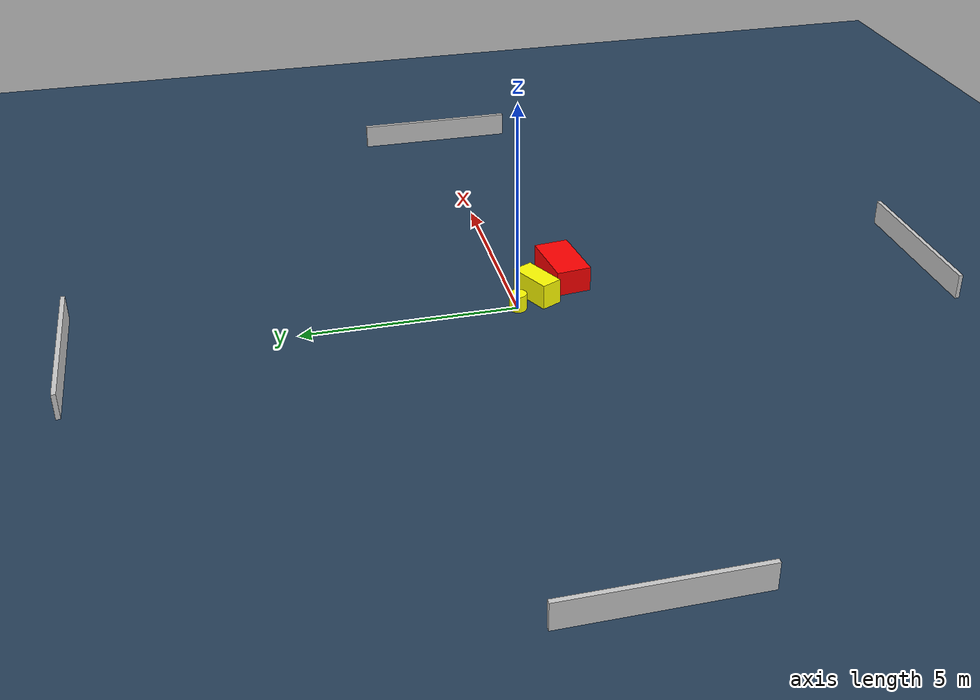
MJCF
<?xml version="1.0" ?>
<mujoco model="generated_environment">
  <option timestep="0.01" integrator="RK4" cone="elliptic"/>
  <default>
    <geom density="1"/>
  </default>
  <asset>
    <texture builtin="gradient" height="3072" name="skybox" rgb1="0.3 0.5 0.7" rgb2="0 0 0" type="skybox" width="512"/>
    <texture builtin="checker" height="300" name="groundplane" rgb1="0.2 0.3 0.4" rgb2="0.1 0.2 0.3" type="2d" width="300"/>
    <material name="groundplane" reflectance="0.2" texrepeat="5 5" texture="groundplane"/>
  </asset>
  <worldbody>
    <light dir="0 0 -1" directional="true" pos="0 0 1.5"/>
    <geom condim="3" friction="0.5 0.005 0.001" material="groundplane" name="floor" pos="0 0 0" size="0 0 0.05" type="plane"/>
    <body name="walls">
      <geom name="wall_1" condim="4" pos="-10.0 0.0 0.3" rgba="0.800000011920929 0.800000011920929 0.800000011920929 1.0" size="0.05 2.0 0.3" type="box"/>
      <geom name="wall_2" condim="4" pos="10.0 0.0 0.3" rgba="0.800000011920929 0.800000011920929 0.800000011920929 1.0" size="0.05 2.0 0.3" type="box"/>
      <geom name="wall_3" condim="4" pos="0.0 -10.0 0.3" rgba="0.800000011920929 0.800000011920929 0.800000011920929 1.0" size="2.0 0.05 0.3" type="box"/>
      <geom name="wall_4" condim="4" pos="0.0 10.0 0.3" rgba="0.800000011920929 0.800000011920929 0.800000011920929 1.0" size="2.0 0.05 0.3" type="box"/>
    </body>
    <body name="robot">
      <joint name="joint_x" type="slide" pos="0 0 0" axis="1 0 0"/>
      <joint name="joint_y" type="slide" pos="0 0 0" axis="0 1 0"/>
      <geom name="robot" type="cylinder" pos="0.0 0.0 0.2" size="0.2 0.2 0.0" mass="5.0" friction="1.0 0.005 0.0001" condim="4" rgba="1.0 1.0 0.0 1.0"/>
    </body>
    <body name="obstacle_1_movable">
      <geom name="obstacle_1_movable" condim="4" pos="0.41468194190781493 -0.5508785382307556 0.3" euler="0 0 206.04508322460197" friction="0.0 0.005 0.001" rgba="1.0 1.0 0.0 1.0" size="0.5287006033155291 0.24921161198950553 0.3" type="box" mass="0.1"/>
      <joint type="free"/>
    </body>
    <body name="obstacle_2_static">
      <geom name="obstacle_2_static" condim="4" pos="1.111465966943063 -1.3503141240602416 0.3" euler="0 0 186.5306332106651" friction="0.0 0.005 0.001" rgba="1.0 0.0 0.0 1.0" size="0.7399464947826488 0.413373073112816 0.3" type="box"/>
    </body>
  </worldbody>
  <actuator>
    <motor name="actuator_x" joint="joint_x" gear="1" ctrlrange="-1 1"/>
    <motor name="actuator_y" joint="joint_y" gear="1" ctrlrange="-1 1"/>
  </actuator>
</mujoco>
